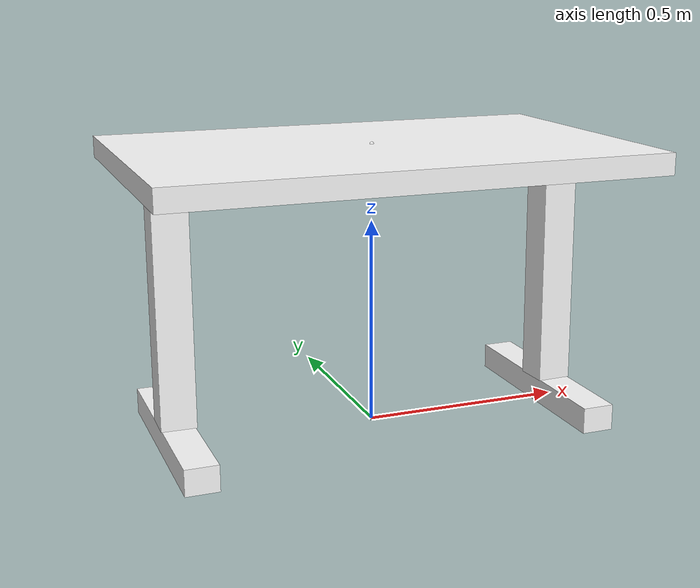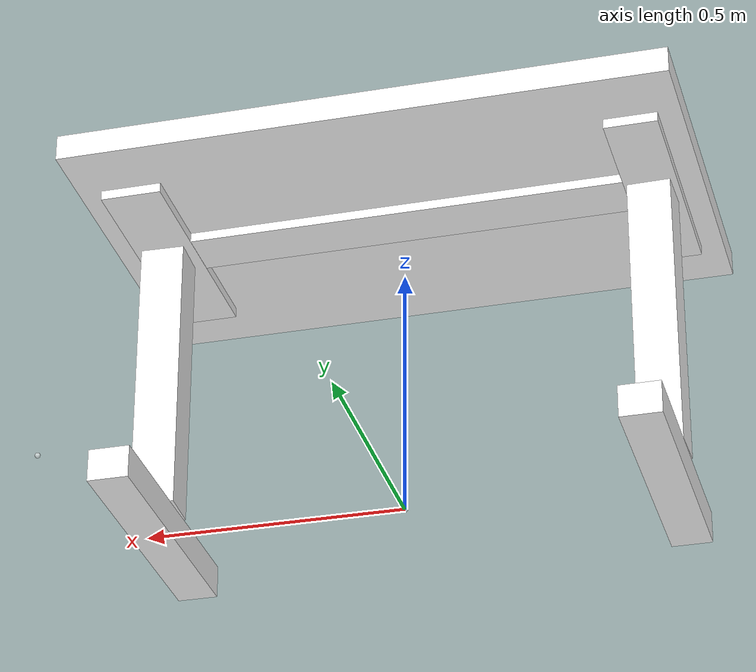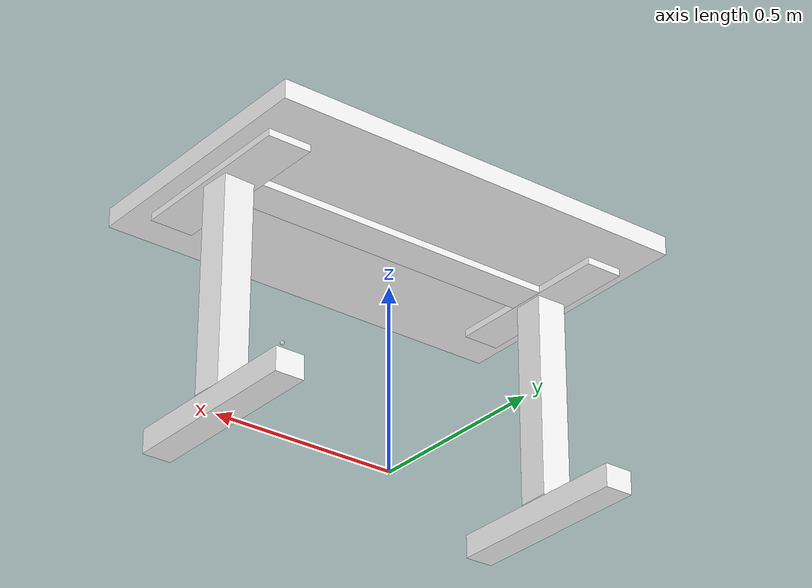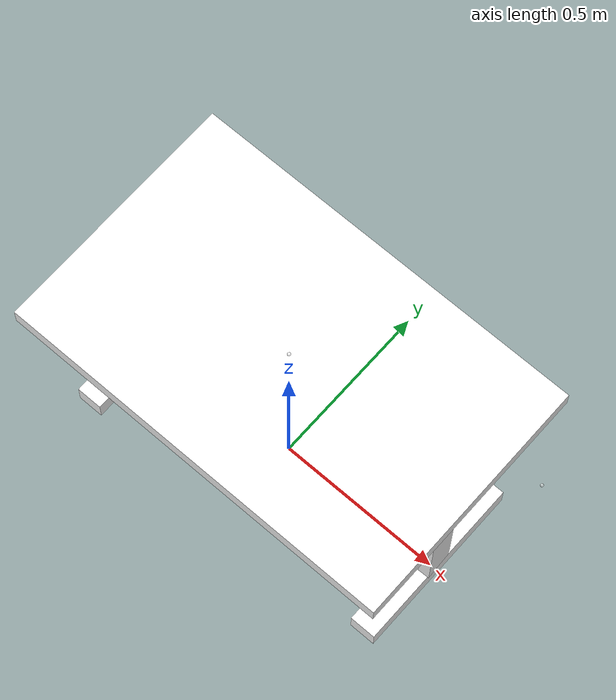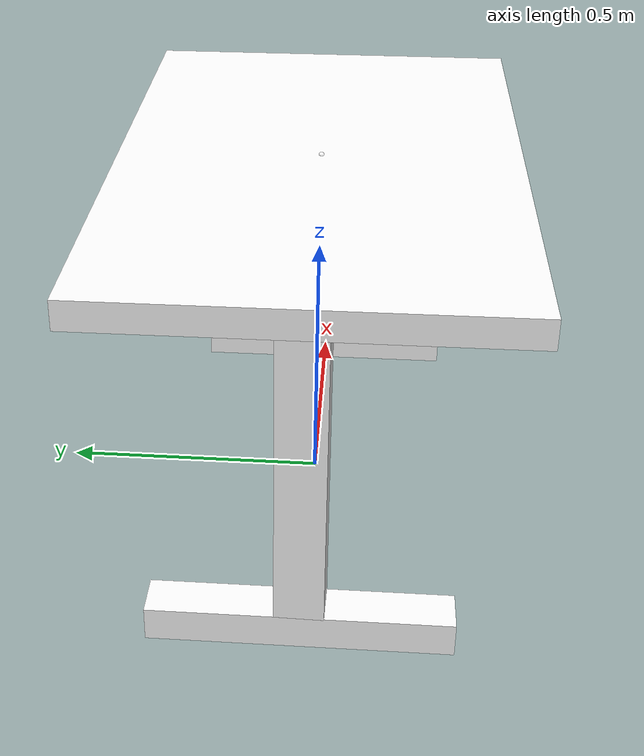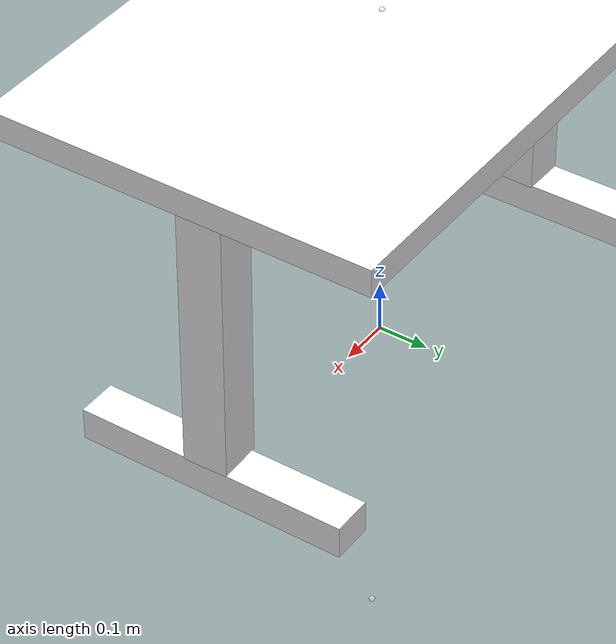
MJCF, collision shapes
<mujoco model="lab_table">
  <default>
    <default class="visual">
      <geom group="1" type="mesh" contype="0" conaffinity="0" density="100"/>
    </default>
    <default class="collision">
      <geom group="0" type="mesh" density="100" solimp="0.95 0.98 0.001" solref="0.004 1" rgba="1 1 1 0.25"/>
    </default>
  </default>
  <asset>
    <texture type="2d" name="Image_0" file="textures/Image_0.png"/>
    <material name="PBR_Material" texture="Image_0" specular="0.5" shininess="0.25"/>
    <mesh file="meshes/lab_table.obj" name="lab_table"/>
  </asset>
  <worldbody>
    <body>
      <body name="object">
        <geom material="PBR_Material" mesh="lab_table" class="visual"/>
        <geom name="collider_box_2f4d7726" type="box" pos="0.4843686625509804 -0.000730093650563612 0.3342451038217457" size="0.04263440320922718 0.04285815157647449 0.2785983345803944" quat="0.005135747294760671 0.9998119259901994 0.0186999519307263 0.00022032993656703975" class="collision"/>
        <geom name="collider_box_f3b4e739" type="box" pos="0 0.003 0.658" size="0.587 0.368 0.026" class="collision"/>
        <geom name="collider_box_90f1e61f" type="box" pos="-0.00954106500000005 0.0029612799999999993 0.62735063" size="0.014453629999999995 0.05161405327501812 0.43084086355897366" quat="9.14067532065674e-05 -0.7071067752785329 9.140675320652676e-05 0.7071067752785327" class="collision"/>
        <geom name="collider_box_5bc23038" type="box" pos="-0.490715503853547 0.002950882518163021 0.02401571" size="0.0313436 0.039379695186117364 0.26608269445757937" quat="0.4999840367343198 -0.5000159627560445 0.49998403673431996 0.5000159627560447" class="collision"/>
        <geom name="collider_box_25591b6e" type="box" pos="-0.48929601084175645 0.002471445296000595 0.333870825" size="0.04208595265213852 0.04300403156756598 0.278456965" quat="0.0 -0.9999450792382256 0.010480386789563123 0.0" class="collision"/>
        <geom name="collider_box_737e359a" type="box" pos="0.4862727667260499 0.003058549031851817 0.024393834739060927" size="0.03166195583702207 0.03920107069552364 0.2658917817754224" quat="0.5006412500091809 0.5005636633450814 0.49929226103709484 -0.49950134714158967" class="collision"/>
        <geom name="collider_box_6633a536" type="box" pos="0.48068282999999995 -0.001122674999999979 0.627093285" size="0.014710975000000015 0.05939634999999996 0.24522559500000002" quat="0.4999999999999999 -0.4999999999999998 -0.5000000000000001 -0.4999999999999997" class="collision"/>
        <geom name="collider_box_f9f8fcce" type="box" pos="-0.49178033000000004 0.00173824500000001 0.627093285" size="0.014710975000000015 0.05140170000000002 0.243484215" quat="0.4999999999999999 -0.4999999999999998 -0.5000000000000001 -0.4999999999999997" class="collision"/>
      </body>
      <site name="bottom_site" pos="0 0 -0.00108" rgba="1 1 1 0.5" size="0.005"/>
      <site name="top_site" pos="0 0 0.684446" rgba="1 1 1 0.5" size="0.005"/>
      <site name="horizontal_radius_site" pos="0.581634 0.371296 0" rgba="1 1 1 0.5" size="0.005"/>
    </body>
  </worldbody>
</mujoco>
